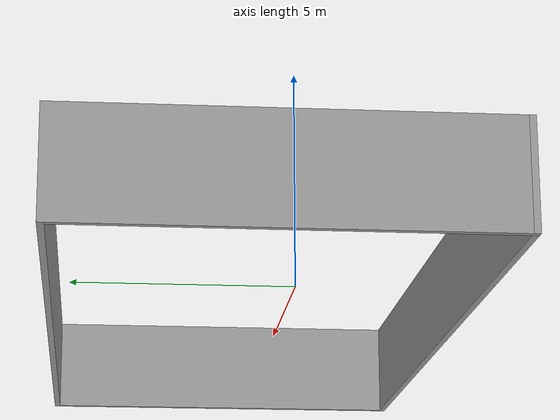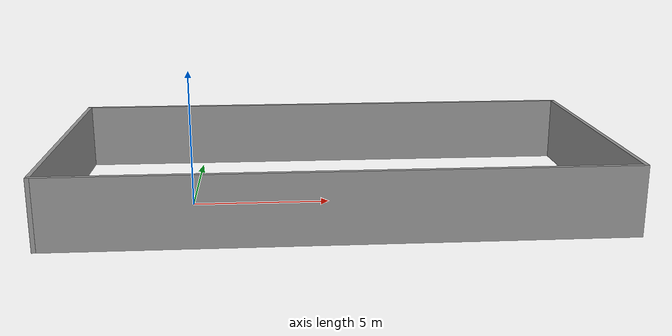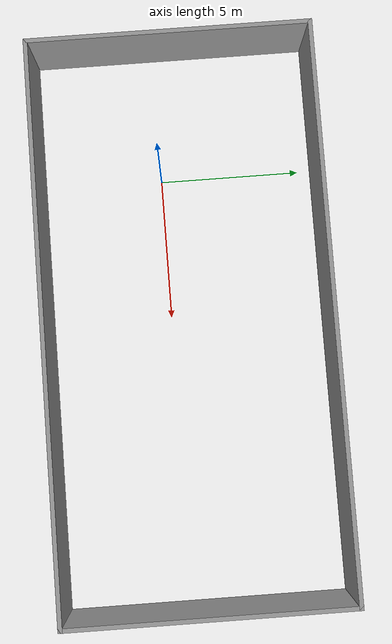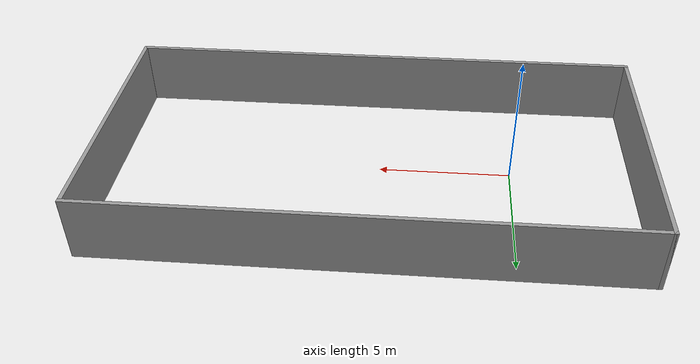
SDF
<?xml version="1.0" ?>
<sdf version="1.6">
<model name='competition_pool'>
      <pose>5.2464 0.596071 0 0 -0 0</pose>
      <link name='Wall_16'>
        <collision name='Wall_16_Collision'>
          <geometry>
            <box>
              <size>10 0.15 2.5</size>
            </box>
          </geometry>
          <pose>0 0 1.25 0 -0 0</pose>
          <max_contacts>10</max_contacts>
          <surface>
            <contact>
              <ode/>
            </contact>
            <bounce/>
            <friction>
              <torsional>
                <ode/>
              </torsional>
              <ode/>
            </friction>
          </surface>
        </collision>
        <visual name='Wall_16_Visual'>
          <pose>0 0 1.25 0 -0 0</pose>
          <geometry>
            <box>
              <size>10 0.15 2.5</size>
            </box>
          </geometry>
          <material>
            <script>
              <uri>file://media/materials/scripts/gazebo.material</uri>
              <name>Gazebo/Grey</name>
            </script>
            <ambient>1 1 1 1</ambient>
          </material>
          <meta>
            <layer>0</layer>
          </meta>
        </visual>
        <pose>-9.925 0 0 0 -0 1.5708</pose>
        <self_collide>0</self_collide>
        <enable_wind>0</enable_wind>
        <kinematic>0</kinematic>
      </link>
      <link name='Wall_17'>
        <collision name='Wall_17_Collision'>
          <geometry>
            <box>
              <size>20 0.15 2.5</size>
            </box>
          </geometry>
          <pose>0 0 1.25 0 -0 0</pose>
          <max_contacts>10</max_contacts>
          <surface>
            <contact>
              <ode/>
            </contact>
            <bounce/>
            <friction>
              <torsional>
                <ode/>
              </torsional>
              <ode/>
            </friction>
          </surface>
        </collision>
        <visual name='Wall_17_Visual'>
          <pose>0 0 1.25 0 -0 0</pose>
          <geometry>
            <box>
              <size>20 0.15 2.5</size>
            </box>
          </geometry>
          <material>
            <script>
              <uri>file://media/materials/scripts/gazebo.material</uri>
              <name>Gazebo/Grey</name>
            </script>
            <ambient>1 1 1 1</ambient>
          </material>
          <meta>
            <layer>0</layer>
          </meta>
        </visual>
        <pose>-0 4.925 0 0 -0 0</pose>
        <self_collide>0</self_collide>
        <enable_wind>0</enable_wind>
        <kinematic>0</kinematic>
      </link>
      <link name='Wall_18'>
        <collision name='Wall_18_Collision'>
          <geometry>
            <box>
              <size>10 0.15 2.5</size>
            </box>
          </geometry>
          <pose>0 0 1.25 0 -0 0</pose>
          <max_contacts>10</max_contacts>
          <surface>
            <contact>
              <ode/>
            </contact>
            <bounce/>
            <friction>
              <torsional>
                <ode/>
              </torsional>
              <ode/>
            </friction>
          </surface>
        </collision>
        <visual name='Wall_18_Visual'>
          <pose>0 0 1.25 0 -0 0</pose>
          <geometry>
            <box>
              <size>10 0.15 2.5</size>
            </box>
          </geometry>
          <material>
            <script>
              <uri>file://media/materials/scripts/gazebo.material</uri>
              <name>Gazebo/Grey</name>
            </script>
            <ambient>1 1 1 1</ambient>
          </material>
          <meta>
            <layer>0</layer>
          </meta>
        </visual>
        <pose>9.925 0 0 0 -0 -1.5708</pose>
        <self_collide>0</self_collide>
        <enable_wind>0</enable_wind>
        <kinematic>0</kinematic>
      </link>
      <link name='Wall_19'>
        <collision name='Wall_19_Collision'>
          <geometry>
            <box>
              <size>20 0.15 2.5</size>
            </box>
          </geometry>
          <pose>0 0 1.25 0 -0 0</pose>
          <max_contacts>10</max_contacts>
          <surface>
            <contact>
              <ode/>
            </contact>
            <bounce/>
            <friction>
              <torsional>
                <ode/>
              </torsional>
              <ode/>
            </friction>
          </surface>
        </collision>
        <visual name='Wall_19_Visual'>
          <pose>0 0 1.25 0 -0 0</pose>
          <geometry>
            <box>
              <size>20 0.15 2.5</size>
            </box>
          </geometry>
          <material>
            <script>
              <uri>file://media/materials/scripts/gazebo.material</uri>
              <name>Gazebo/Grey</name>
            </script>
            <ambient>1 1 1 1</ambient>
          </material>
          <meta>
            <layer>0</layer>
          </meta>
        </visual>
        <pose>-0 -4.925 0 0 -0 3.14159</pose>
        <self_collide>0</self_collide>
        <enable_wind>0</enable_wind>
        <kinematic>0</kinematic>
      </link>
      <static>1</static>
    </model>
</sdf>
